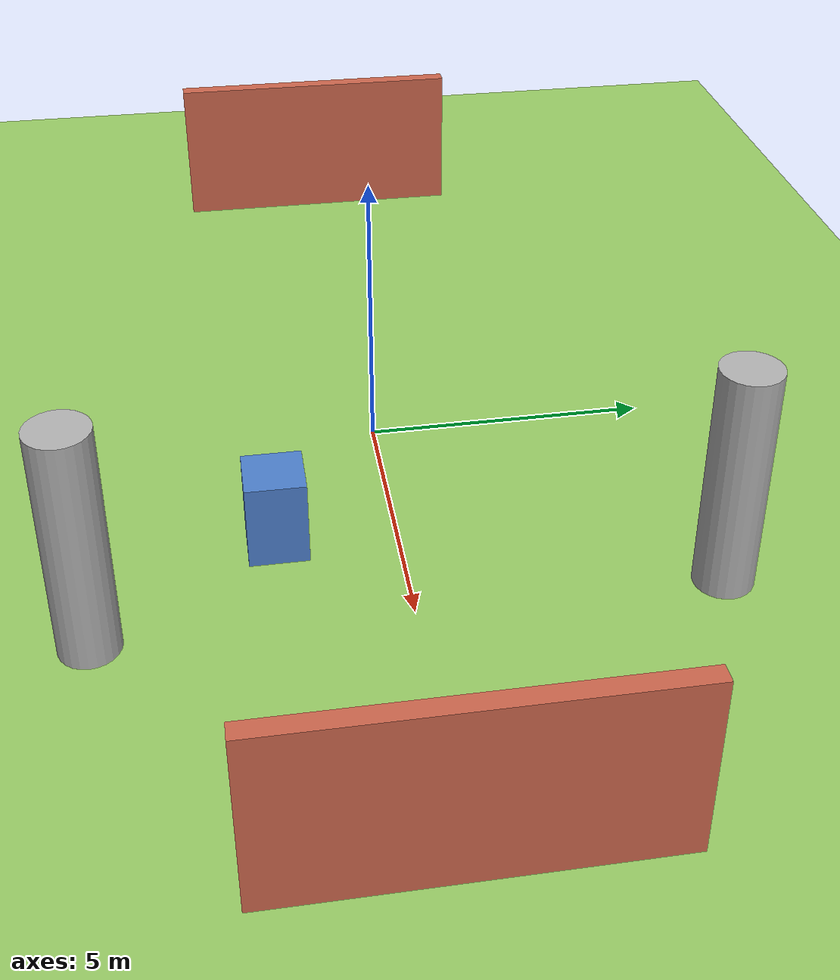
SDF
<?xml version="1.0" ?>
<sdf version="1.7">
<world name="obstacle_world">
<physics name="1ms" type="ignored">
<max_step_size>0.001</max_step_size>
<real_time_factor>1.0</real_time_factor>
</physics>
<plugin filename="gz-sim-physics-system" name="gz::sim::systems::Physics"></plugin>
<plugin filename="gz-sim-user-commands-system" name="gz::sim::systems::UserCommands"></plugin>
<plugin filename="gz-sim-scene-broadcaster-system" name="gz::sim::systems::SceneBroadcaster"></plugin>
<plugin filename="gz-sim-sensors-system" name="gz::sim::systems::Sensors">
  <render_engine>ogre2</render_engine>
</plugin>
<plugin filename="gz-sim-imu-system" name="gz::sim::systems::Imu"></plugin>
<plugin filename="gz-sim-navsat-system" name="gz::sim::systems::NavSat"></plugin>

<spherical_coordinates>
  <latitude_deg>-35.363262</latitude_deg>
  <longitude_deg>149.165237</longitude_deg>
  <elevation>584</elevation>
  <heading_deg>0</heading_deg>
  <surface_model>EARTH_WGS84</surface_model>
</spherical_coordinates>

<scene>
<ambient>0.6 0.6 0.6 1</ambient>
<background>0.8 0.9 1.0 1</background>
<sky>
<clouds><speed>12</speed></clouds>
</sky>
</scene>

<light type="directional" name="sun">
<cast_shadows>true</cast_shadows>
<pose>0 0 10 0 0 0</pose>
<diffuse>0.8 0.8 0.8 1</diffuse>
<specular>0.2 0.2 0.2 1</specular>
<direction>-0.5 0.1 -0.9</direction>
</light>

<!-- Ground plane -->
<model name="ground_plane">
<static>true</static>
<link name="link">
<collision name="collision">
<geometry><plane><normal>0 0 1</normal><size>200 200</size></plane></geometry>
</collision>
<visual name="visual">
<geometry><plane><normal>0 0 1</normal><size>200 200</size></plane></geometry>
<material>
<ambient>0.4 0.6 0.3 1</ambient>
<diffuse>0.6 0.8 0.4 1</diffuse>
</material>
</visual>
</link>
</model>

<!-- OBSTACLES — for sonar / obstacle avoidance   -->

<!-- Wall 1: 10m north of spawn -->
<model name="wall_north">
<static>true</static>
<pose>10 0 1.5 0 0 0</pose>
<link name="link">
<collision name="collision">
<geometry><box><size>0.3 6 3</size></box></geometry>
</collision>
<visual name="visual">
<geometry><box><size>0.3 6 3</size></box></geometry>
<material>
<ambient>0.6 0.3 0.2 1</ambient>
<diffuse>0.8 0.4 0.3 1</diffuse>
</material>
</visual>
</link>
</model>

<!-- Wall 2: 10m south of spawn -->
<model name="wall_south">
<static>true</static>
<pose>-10 0 1.5 0 0 0</pose>
<link name="link">
<collision name="collision">
<geometry><box><size>0.3 6 3</size></box></geometry>
</collision>
<visual name="visual">
<geometry><box><size>0.3 6 3</size></box></geometry>
<material>
<ambient>0.6 0.3 0.2 1</ambient>
<diffuse>0.8 0.4 0.3 1</diffuse>
</material>
</visual>
</link>
</model>

<!-- Pillar 1: 5m north-east -->
<model name="pillar_ne">
<static>true</static>
<pose>5 -5 2 0 0 0</pose>
<link name="link">
<collision name="collision">
<geometry><cylinder><radius>0.5</radius><length>4</length></cylinder></geometry>
</collision>
<visual name="visual">
<geometry><cylinder><radius>0.5</radius><length>4</length></cylinder></geometry>
<material>
<ambient>0.5 0.5 0.5 1</ambient>
<diffuse>0.7 0.7 0.7 1</diffuse>
</material>
</visual>
</link>
</model>

<!-- Pillar 2: 5m north-west -->
<model name="pillar_nw">
<static>true</static>
<pose>5 5 2 0 0 0</pose>
<link name="link">
<collision name="collision">
<geometry><cylinder><radius>0.5</radius><length>4</length></cylinder></geometry>
</collision>
<visual name="visual">
<geometry><cylinder><radius>0.5</radius><length>4</length></cylinder></geometry>
<material>
<ambient>0.5 0.5 0.5 1</ambient>
<diffuse>0.7 0.7 0.7 1</diffuse>
</material>
</visual>
</link>
</model>

<!-- Box obstacle: 3m ahead, offset right -->
<model name="box_obstacle">
<static>true</static>
<pose>3 -2 0.75 0 0 0</pose>
<link name="link">
<collision name="collision">
<geometry><box><size>1 1 1.5</size></box></geometry>
</collision>
<visual name="visual">
<geometry><box><size>1 1 1.5</size></box></geometry>
<material>
<ambient>0.2 0.4 0.7 1</ambient>
<diffuse>0.3 0.5 0.8 1</diffuse>
</material>
</visual>
</link>
</model>

</world>
</sdf>
